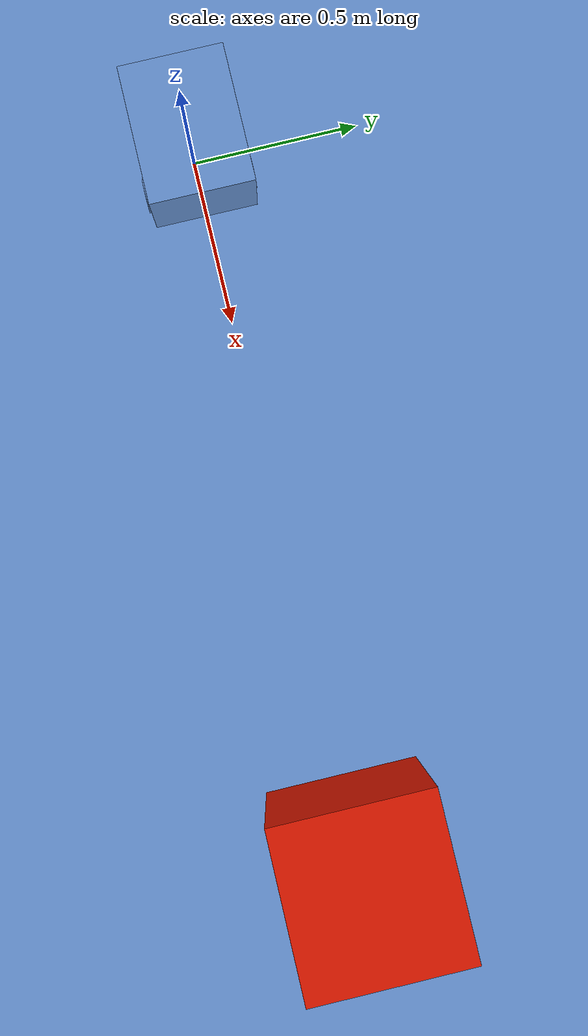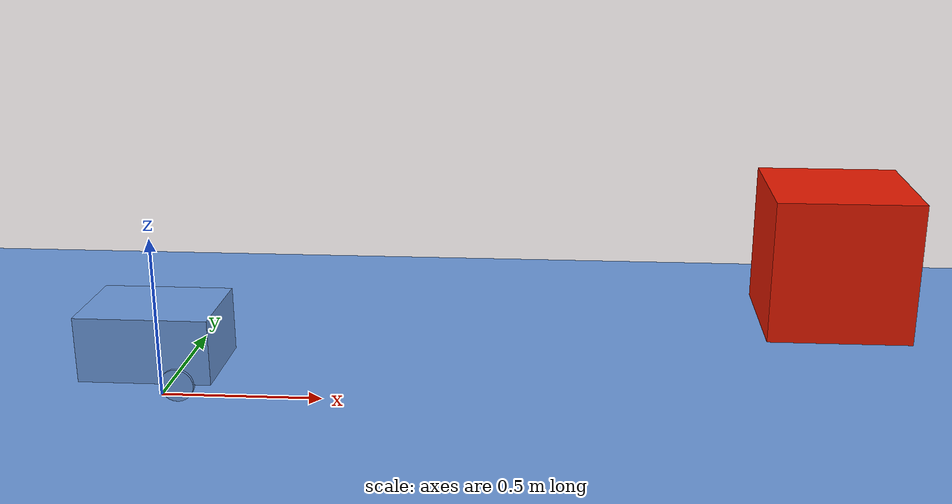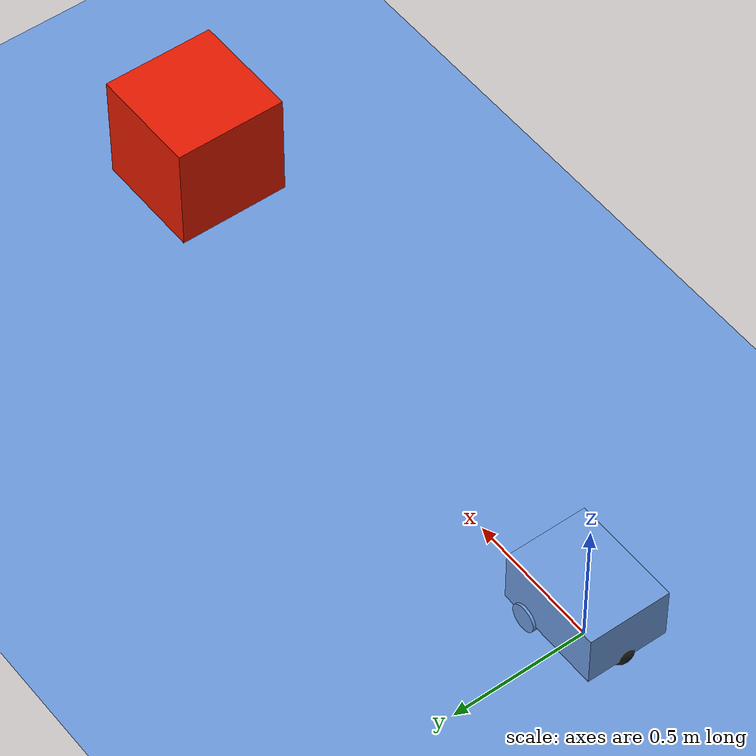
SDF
<?xml version="1.0"?>
<sdf version="1.7">
  <world name="default">

    <!-- свет -->
    <light name="sun" type="directional">
      <cast_shadows>true</cast_shadows>
      <pose>0 0 10 0 0 0</pose>
      <diffuse>0.8 0.8 0.8 1</diffuse>
      <specular>0.2 0.2 0.2 1</specular>
      <direction>-0.5 0.1 -1</direction>
    </light>

    <!-- земля -->
    <model name="ground">
      <static>true</static>
      <link name="link">
        <collision name="collision">
          <geometry>
            <plane>
              <normal>0 0 1</normal>
              <size>100 100</size>
            </plane>
          </geometry>
        </collision>

        <visual name="visual">
          <geometry>
            <plane>
              <normal>0 0 1</normal>
              <size>100 100</size>
            </plane>
          </geometry>
          <material>
            <ambient>0.42 0.6 0.86 1</ambient>
            <diffuse>0.42 0.6 0.86 1</diffuse>
            <specular>0.18 0.18 0.22 1</specular>
          </material>
        </visual>
      </link>
    </model>

    <model name="target_cube">
      <pose> 2 0 0.5 0 0 0</pose>
      <link name="link">
        <collision name="collision">
          <geometry>
            <box>
              <size>0.4 0.4 0.4</size>
            </box>
          </geometry>
        </collision>
        <visual name="visual">
          <geometry>
            <box>
              <size>0.4 0.4 0.4</size>
            </box>
          </geometry>
          <material>
            <ambient>0.9 0.1 0 1</ambient>
            <diffuse>0.9 0.1 0 1</diffuse>
          </material>
        </visual>
      </link>
      <static>false</static>
    </model>

    <model name="diff_bot">
      <static>false</static>
      <pose>0 0 0.2 0 0 0</pose>

      <link name="base_link">
        <inertial>
          <pose>0 0 0 0 0 0</pose>
          <mass>5.0</mass>
          <inertia>
            <ixx>0.1625</ixx>
            <iyy>0.25</iyy>
            <izz>0.3125</izz>
            <ixy>0.0</ixy>
            <ixz>0.0</ixz>
            <iyz>0.0</iyz>
          </inertia>
        </inertial>

        <collision name="base_collision">
          <geometry>
            <box>
              <size>0.4 0.3 0.12</size>
            </box>
          </geometry>
        </collision>

        <visual name="base_visual">
          <material>
            <ambient>0.42 0.6 0.86 1</ambient>
            <diffuse>0.42 0.6 0.86 1</diffuse>
            <specular>0.18 0.18 0.22 1</specular>
          </material>
          <geometry>
            <box>
              <size>0.4 0.3 0.2</size>
            </box>
          </geometry>
        </visual>
      </link>

      <plugin filename="gz-sim-diff-drive-system" name="gz::sim::systems::DiffDrive">
        <left_joint>left_wheel_joint</left_joint>
        <right_joint>right_wheel_joint</right_joint>

        <wheel_separation>0.30</wheel_separation>
        <wheel_radius>0.05</wheel_radius>

        <topic>/cmd_vel</topic>

        <odom_publish_frequency>30</odom_publish_frequency>

        <odom_topic>/model/diff_bot/odometry</odom_topic>

        <tf_topic>/model/diff_bot/tf</tf_topic>

        <frame_id>odom</frame_id>
        <child_frame_id>base_link</child_frame_id>
      </plugin>

      <link name="left_wheel">

        <pose>0.1 0.15 -0.1 0 0 0</pose>

        <inertial>
          <mass>0.3</mass>
          <inertia>
            <ixx>0.0001975</ixx>
            <iyy>0.000375</iyy>
            <izz>0.0001975</izz>
            <ixy>0</ixy>
            <ixz>0</ixz>
            <iyz>0</iyz>
          </inertia>
        </inertial>

        <collision name="col">

          <pose>0 0 0 1.57079632679 0 0</pose>
          <geometry>
            <cylinder>
              <radius>0.05</radius>
              <length>0.02</length>
            </cylinder>
          </geometry>
          <surface>
            <friction>
              <ode>
                <mu>1.0</mu>
                <mu2>1.0</mu2>
              </ode>
            </friction>
          </surface>
        </collision>

        <visual name="vis">
          <pose>0 0 0 1.57079632679 0 0</pose>
          <material>
            <ambient>0.42 0.6 0.86 1</ambient>
            <diffuse>0.42 0.6 0.86 1</diffuse>
            <specular>0.18 0.18 0.22 1</specular>
          </material>
          <geometry>
            <cylinder>
              <radius>0.05</radius>
              <length>0.02</length>
            </cylinder>
          </geometry>
        </visual>
      </link>

      <link name="right_wheel">
        <pose>0.1 -0.15 -0.1 0 0 0</pose>

        <inertial>
          <mass>0.3</mass>
          <inertia>
            <ixx>0.0001975</ixx>
            <iyy>0.000375</iyy>
            <izz>0.0001975</izz>
            <ixy>0</ixy>
            <ixz>0</ixz>
            <iyz>0</iyz>
          </inertia>
        </inertial>

        <collision name="col">
          <pose>0 0 0 1.57079632679 0 0</pose>
          <geometry>
            <cylinder>
              <radius>0.05</radius>
              <length>0.02</length>
            </cylinder>
          </geometry>
          <surface>
            <friction>
              <ode>
                <mu>1.0</mu>
                <mu2>1.0</mu2>
              </ode>
            </friction>
          </surface>
        </collision>

        <visual name="vis">
          <pose>0 0 0 1.57079632679 0 0</pose>
          <material>
            <ambient>0.42 0.6 0.86 1</ambient>
            <diffuse>0.42 0.6 0.86 1</diffuse>
            <specular>0.18 0.18 0.22 1</specular>
          </material>
          <geometry>
            <cylinder>
              <radius>0.05</radius>
              <length>0.02</length>
            </cylinder>
          </geometry>
        </visual>
      </link>

      <joint name="left_wheel_joint" type="revolute">
        <parent>base_link</parent>
        <child>left_wheel</child>
        <axis>

          <xyz>0 1 0</xyz>
        </axis>
      </joint>

      <joint name="right_wheel_joint" type="revolute">
        <parent>base_link</parent>
        <child>right_wheel</child>
        <axis>
          <xyz>0 1 0</xyz>
        </axis>
      </joint>

      <link name="caster_wheel">

        <pose>-0.16 0 -0.10 0 0 0</pose>

        <inertial>
          <mass>0.05</mass>

          <inertia>
            <ixx>0.00002</ixx>
            <iyy>0.00002</iyy>
            <izz>0.00002</izz>
            <ixy>0</ixy>
            <ixz>0</ixz>
            <iyz>0</iyz>
          </inertia>
        </inertial>

        <collision name="caster_col">
          <geometry>
            <sphere>
              <radius>0.05</radius>
            </sphere>
          </geometry>

          <surface>
            <friction>
              <ode>
                <mu>0.05</mu>
                <mu2>0.05</mu2>
              </ode>
            </friction>
          </surface>
        </collision>

        <visual name="caster_vis">
          <material>
            <ambient>0.1 0.1 0.1 1</ambient>
            <diffuse>0.1 0.1 0.1 1</diffuse>
            <specular>0.2 0.2 0.2 1</specular>
          </material>
          <geometry>
            <sphere>
              <radius>0.05</radius>
            </sphere>
          </geometry>
        </visual>
      </link>

      <joint name="caster_joint" type="ball">
        <parent>base_link</parent>
        <child>caster_wheel</child>
      </joint>

      <link name="camera_link">

        <pose>0.20 0 0.18 0 0 0</pose>

        <inertial>
          <mass>0.1</mass>
        </inertial>

        <!-- OAK-D Pro (приближение): RGB + стереопара -->
        <sensor name="oak_rgb_camera" type="camera">
          <always_on>true</always_on>
          <update_rate>30</update_rate>
          <visualize>true</visualize>
          <pose>0.02 0 0 0 0 0</pose>
          <camera>
            <horizontal_fov>1.2217</horizontal_fov>
            <image>
              <width>1280</width>
              <height>720</height>
              <format>R8G8B8</format>
            </image>
            <clip>
              <near>0.05</near>
              <far>50</far>
            </clip>
          </camera>
          <topic>/oak/rgb/image_raw</topic>
        </sensor>

        <sensor name="oak_left_camera" type="camera">
          <always_on>true</always_on>
          <update_rate>30</update_rate>
          <visualize>true</visualize>
          <pose>0 0.0375 0 0 0 0</pose>
          <camera>
            <horizontal_fov>1.255</horizontal_fov>
            <image>
              <width>640</width>
              <height>400</height>
              <format>R8G8B8</format>
            </image>
            <clip>
              <near>0.05</near>
              <far>50</far>
            </clip>
          </camera>
          <topic>/oak/left/image_raw</topic>
        </sensor>

        <sensor name="oak_right_camera" type="camera">
          <always_on>true</always_on>
          <update_rate>30</update_rate>
          <visualize>true</visualize>
          <pose>0 -0.0375 0 0 0 0</pose>
          <camera>
            <horizontal_fov>1.255</horizontal_fov>
            <image>
              <width>640</width>
              <height>400</height>
              <format>R8G8B8</format>
            </image>
            <clip>
              <near>0.05</near>
              <far>50</far>
            </clip>
          </camera>
          <topic>/oak/right/image_raw</topic>
        </sensor>

        <sensor name="oak_depth_camera" type="depth_camera">
          <always_on>true</always_on>
          <update_rate>30</update_rate>
          <visualize>true</visualize>
          <pose>0 0 0 0 0 0</pose>
          <camera>
            <horizontal_fov>1.255</horizontal_fov>
            <image>
              <width>640</width>
              <height>400</height>
              <format>R8G8B8</format>
            </image>
            <clip>
              <near>0.05</near>
              <far>30</far>
            </clip>
          </camera>
          <topic>/oak/stereo/depth</topic>
        </sensor>
      </link>

      <joint name="camera_fixed_joint" type="fixed">
        <parent>base_link</parent>
        <child>camera_link</child>
      </joint>

      <link name="lidar_link">
        <pose>0.2 0 0.2 0 0 0</pose>

        <sensor name="lidar_2d" type="gpu_lidar">
          <pose>0 0 0 0 0 0</pose>
          <topic>scan</topic>
          <update_rate>15</update_rate>
          <always_on>1</always_on>
          <visualize>true</visualize>

          <ray>
            <scan>
              <horizontal>
                <samples>720</samples>
                <resolution>1</resolution>
                <min_angle>-3.14159</min_angle>
                <max_angle> 3.14159</max_angle>
              </horizontal>

              <!-- 2D: один “слой” -->
              <vertical>
                <samples>1</samples>
                <resolution>1</resolution>
                <min_angle>0</min_angle>
                <max_angle>0</max_angle>
              </vertical>
            </scan>

            <range>
              <min>0.12</min>
              <max>12.0</max>
              <resolution>0.01</resolution>
            </range>

            <noise>
              <type>gaussian</type>
              <mean>0.0</mean>
              <stddev>0.01</stddev>
            </noise>
          </ray>
        </sensor>

      </link>

      <joint name="lidar_fixed_joint" type="fixed">
        <parent>base_link</parent>
        <child>lidar_link</child>
      </joint>

    </model>

    <plugin filename="gz-sim-physics-system" name="gz::sim::systems::Physics" />

    <plugin filename="gz-sim-sensors-system" name="gz::sim::systems::Sensors">
      <render_engine>ogre2</render_engine>
    </plugin>

    <plugin filename="gz-sim-scene-broadcaster-system" name="gz::sim::systems::SceneBroadcaster" />
    <plugin filename="gz-sim-user-commands-system" name="gz::sim::systems::UserCommands" />

  </world>
</sdf>
